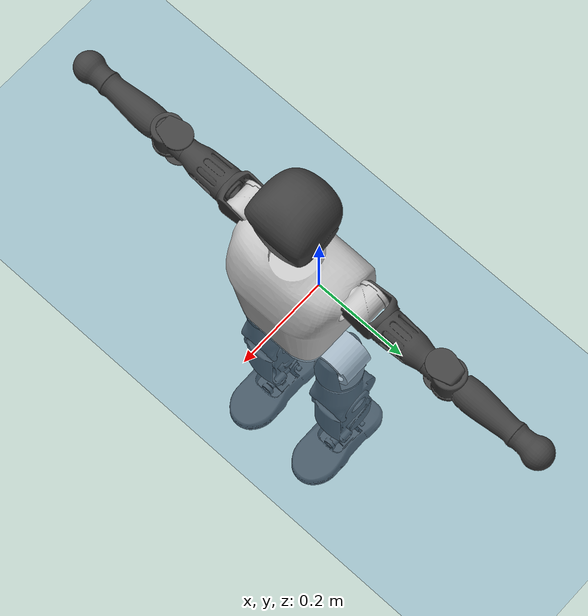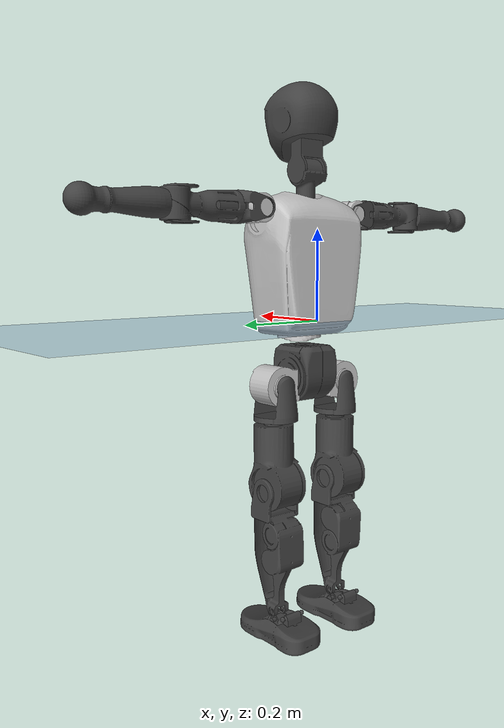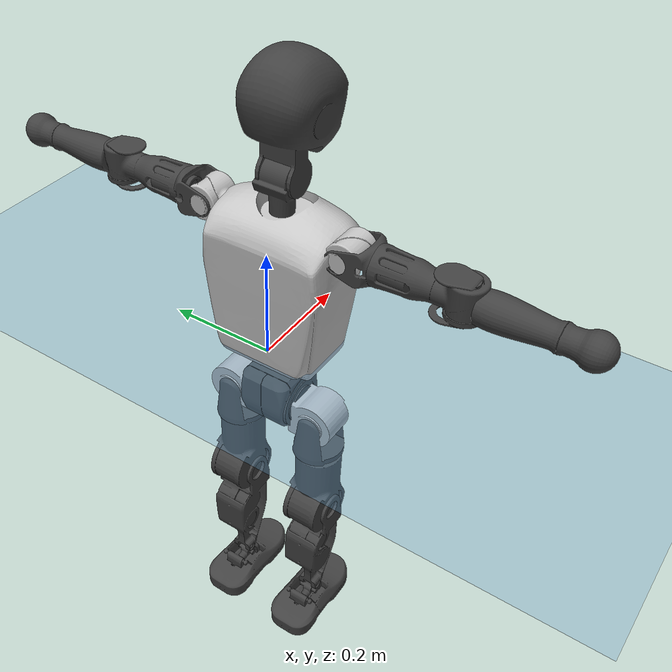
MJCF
<mujoco model="T1">
  <compiler angle="radian" assetdir="assets" balanceinertia="true" inertiafromgeom="false"/>

  <option timestep="0.005" density="1.2" viscosity="2e-05"/>

  <size nkey="1"/>

  <visual>
    <quality shadowsize="8192"/>
    <map shadowclip="0.5"/>
  </visual>

  <default>
    <default class="/">
      <joint armature="0.01" damping="0.01" frictionloss="0.1"/>
      <geom contype="0" conaffinity="0" group="1" solref="-1000 -80"/>
      <site size="0.01 0.005 0.005" group="5"/>
      <general forcelimited="true" biastype="affine" gainprm="25" biasprm="0 -25 -0.6"/>
      <default class="t1">
        <geom rgba="0.25 0.25 0.25 1"/>
        <default class="visual">
          <geom type="mesh" group="2"/>
        </default>
        <default class="collision">
          <geom group="3"/>
        </default>
        <default class="foot">
          <geom size="0.1115 0.05 0.015" type="box" condim="6" group="4" priority="1" solimp="0.015 1 0.015"/>
        </default>
        <default class="reward_collision_sphere">
          <geom group="5" rgba="1 0 0 1"/>
        </default>
      </default>
    </default>
  </default>

  <asset>
    <texture type="skybox" colorspace="auto" name="//unnamed_texture_0" builtin="gradient" rgb1="0.95 0.95 0.95" rgb2="0.95 0.95 0.95" width="100" height="600"/>
    <texture type="2d" colorspace="auto" name="texplane" builtin="checker" rgb1="0.345 0.575 0.748" rgb2="0.345 0.575 0.748" markrgb="1 1 1" width="512" height="512"/>
    <material name="MatPlane" class="/" texture="texplane" texuniform="true" texrepeat="2 2" specular="0.9"/>
    <mesh name="Trunk" class="/" file="Trunk.stl"/>
    <mesh name="H1" class="/" file="H1.stl"/>
    <mesh name="H2" class="/" file="H2.stl"/>
    <mesh name="AL1" class="/" file="AL1.stl"/>
    <mesh name="AL2" class="/" file="AL2.stl"/>
    <mesh name="AL3" class="/" file="AL3.stl"/>
    <mesh name="left_hand_link" class="/" file="left_hand_link.stl"/>
    <mesh name="AR1" class="/" file="AR1.stl"/>
    <mesh name="AR2" class="/" file="AR2.stl"/>
    <mesh name="AR3" class="/" file="AR3.stl"/>
    <mesh name="right_hand_link" class="/" file="right_hand_link.stl"/>
    <mesh name="Waist" class="/" file="Waist.stl"/>
    <mesh name="Hip_Pitch_Left" class="/" file="Hip_Pitch_Left.stl"/>
    <mesh name="Hip_Roll_Left" class="/" file="Hip_Roll_Left.stl"/>
    <mesh name="Hip_Yaw_Left" class="/" file="Hip_Yaw_Left.stl"/>
    <mesh name="Shank_Left" class="/" file="Shank_Left.stl"/>
    <mesh name="Ankle_Cross_Left" class="/" file="Ankle_Cross_Left.stl"/>
    <mesh name="left_foot_link" class="/" file="left_foot_link.stl"/>
    <mesh name="Hip_Pitch_Right" class="/" file="Hip_Pitch_Right.stl"/>
    <mesh name="Hip_Roll_Right" class="/" file="Hip_Roll_Right.stl"/>
    <mesh name="Hip_Yaw_Right" class="/" file="Hip_Yaw_Right.stl"/>
    <mesh name="Shank_Right" class="/" file="Shank_Right.stl"/>
    <mesh name="Ankle_Cross_Right" class="/" file="Ankle_Cross_Right.stl"/>
    <mesh name="right_foot_link" class="/" file="right_foot_link.stl"/>
  </asset>

  <worldbody>
    <geom name="floor" class="/" size="100 100 0.125" type="plane" group="0" material="MatPlane"/>
    <light name="toplight_shadow" class="/" pos="0 0 5" dir="0.0990148 0.0990148 -0.990148" type="directional" ambient="0.04 0.04 0.04" diffuse="0.55 0.55 0.55" specular="0.12 0.12 0.12"/>
    <light name="toplight_fill" class="/" pos="0 0 5" dir="0.0990148 0.0990148 -0.990148" type="directional" castshadow="false" ambient="0.04 0.04 0.04" diffuse="0.3 0.3 0.3" specular="0.08 0.08 0.08"/>
    <body name="trunk" childclass="t1" pos="-0.00089566 -0.000331112 0.00237811" quat="0.999999 -0.000567268 0.000884134 0.000757924">
      <inertial pos="0.0337221 -0.00225751 0.116067" quat="0.999955 -0.00132866 -0.00935164 3.96781e-05" mass="7.36331" diaginertia="0.0126057 0.032417 0.084804"/>
      <joint name="//unnamed_joint_0" type="free" armature="0" damping="0" frictionloss="0"/>
      <geom name="//unnamed_geom_1" class="visual" rgba="0.76 0.76 0.76 1" mesh="Trunk"/>
      <geom name="//unnamed_geom_2" class="collision" size="0.0647661 0.0863547 0.129532" pos="0.0400436 0 0.129645" type="box"/>
      <geom name="//unnamed_geom_3" class="reward_collision_sphere" size="0.099308" pos="0.0400436 0 0.108037"/>
      <geom name="//unnamed_geom_4" class="reward_collision_sphere" size="0.0129532" pos="0.0400436 0.0716444 0"/>
      <geom name="//unnamed_geom_5" class="reward_collision_sphere" size="0.0129532" pos="0.0400436 -0.0716444 0"/>
      <geom name="//unnamed_geom_6" class="reward_collision_sphere" size="0.0129532" pos="0.0400436 0.0901876 0.194467"/>
      <geom name="//unnamed_geom_7" class="reward_collision_sphere" size="0.0129532" pos="0.0400436 -0.0901876 0.194467"/>
      <site name="imu" pos="-0.000302556 -0.00112234 -0.0011152" size="0.00863547"/>
      <camera name="track" pos="0 -1.68575 0" quat="0.707107 0.707107 0 0" mode="trackcom"/>
      <camera name="ego_camera" pos="0.0814221 0 0.453757" quat="-0.5 -0.5 0.5 0.5"/>
      <body name="H1" pos="0.041299 -0.00160302 0.260001" quat="1 -0.000176164 -5.28674e-06 -8.30038e-05">
        <inertial pos="-0.000722998 -0.00191649 0.0644466" quat="0.762285 -0.0146526 0.00220693 0.647072" mass="0.287208" diaginertia="3.16672e-05 9.90487e-05 0.000222762"/>
        <joint name="AAHead_yaw" pos="0 0 0" axis="-0.00643366 0.0110993 0.999918" range="-1.5572 1.59073" armature="0.00867614" damping="0.00497433" frictionloss="0.0842265"/>
        <geom name="//unnamed_geom_8" class="visual" mesh="H1"/>
        <body name="H2" pos="-0.00133078 -0.00274508 0.067079" quat="0.999999 0.000510508 -0.000157745 -0.00127176">
          <inertial pos="0.00581651 0.000571348 0.107385" quat="0.989092 0.103428 -0.0712293 -0.0769819" mass="0.397457" diaginertia="0.000266559 0.000829549 0.00262692"/>
          <joint name="Head_pitch" pos="0 0 0" axis="0.01029 -0.999937 0.0043721" stiffness="0.00735223" range="-1.24203 0.297774" armature="0.00989943" damping="0" frictionloss="0.0857923"/>
          <geom name="//unnamed_geom_9" class="visual" mesh="H2"/>
          <geom name="//unnamed_geom_10" class="collision" size="0.0690838" pos="0.00667394 0 0.118841"/>
          <geom name="//unnamed_geom_11" class="reward_collision_sphere" size="0.0777193" pos="0.0133479 0 0.108037"/>
        </body>
      </body>
      <body name="AL1" pos="0.0412652 0.0925627 0.239235" quat="1 -0.000164729 -0.000506362 -0.000308435">
        <inertial pos="-0.000855874 0.0392846 -0.000179889" quat="0.505543 0.493981 -0.506258 0.494077" mass="0.338434" diaginertia="0.00018704 0.000532788 0.000416896"/>
        <joint name="Left_Shoulder_Pitch" pos="0 0 0" axis="0.00039585 0.999999 0.00153882" range="-3.2507 1.22665" armature="0.0077283" damping="0.00279439" frictionloss="0.0753437"/>
        <geom name="//unnamed_geom_12" class="visual" rgba="0.76 0.76 0.76 1" mesh="AL1"/>
        <body name="AL2" pos="-0.00169306 0.0435167 0.000217395" quat="1 5.63463e-05 3.0411e-05 -2.43792e-05">
          <inertial pos="0.0024388 0.0301987 0.000800067" quat="0.485518 0.51546 -0.486664 0.511597" mass="0.107365" diaginertia="5.45885e-05 0.000149969 0.000276894"/>
          <joint name="Left_Shoulder_Roll" pos="0 0 0" axis="-0.999977 -0.00645689 0.00228454" stiffness="0.00939131" range="-1.56689 1.7453" armature="0.00861839" damping="0" frictionloss="0.0865407"/>
          <geom name="//unnamed_geom_13" class="visual" mesh="AL2"/>
          <body name="AL3" pos="0.00271597 0.0516543 -0.000226049" quat="1 -2.17342e-06 -1.44138e-06 -1.54076e-06">
            <inertial pos="0.00215158 0.0718197 -0.000104808" quat="0.711339 0.702746 0.0108613 0.00521611" mass="0.634103" diaginertia="0.00160719 0.00544338 0.000892064"/>
            <joint name="Left_Elbow_Pitch" pos="0 0 0" axis="0.00100554 -0.999993 -0.00347421" stiffness="0.00724471" range="-2.27134 2.30254" armature="0.00907418" damping="0.023436" frictionloss="0.0769701"/>
            <geom name="//unnamed_geom_14" class="visual" mesh="AL3"/>
            <geom name="//unnamed_geom_15" class="collision" size="0.0259064 0.0647661" pos="0 0.0421437 0" quat="0.707105 0.707108 0 0" type="cylinder"/>
            <geom name="//unnamed_geom_16" class="reward_collision_sphere" size="0.0310877"/>
            <body name="left_hand_link" pos="-0.00164966 0.126144 0.000273865" quat="0.999999 0.000315153 -0.00127331 0.000448655">
              <inertial pos="0.000668628 0.0932019 0.00323482" quat="0.707617 0.706596 0.000224416 -0.000710928" mass="0.213603" diaginertia="0.00111152 0.00356813 0.000325196"/>
              <joint name="Left_Elbow_Yaw" pos="0 0 0" axis="-0.00301976 -0.00941389 0.999951" range="-2.4986 -0.0135339" armature="0.00873358" damping="0.00802223" frictionloss="0.0747635"/>
              <geom name="//unnamed_geom_17" class="visual" mesh="left_hand_link"/>
              <geom name="//unnamed_geom_18" class="collision" size="0.0259064 0.0755604" pos="0 0.109574 0" quat="0.707105 0.707108 0 0" type="cylinder"/>
              <geom name="//unnamed_geom_19" class="reward_collision_sphere" size="0.0431774"/>
              <geom name="//unnamed_geom_20" class="reward_collision_sphere" size="0.0302242" pos="0 0.0927162 0"/>
              <geom name="//unnamed_geom_21" class="reward_collision_sphere" size="0.0302242" pos="0 0.181218 0"/>
            </body>
          </body>
        </body>
      </body>
      <body name="AR1" pos="0.03681 -0.0858353 0.235188" quat="1 1.7363e-05 0.000344516 5.8302e-05">
        <inertial pos="-0.000958947 -0.0355844 0.00207528" quat="0.501332 0.498095 -0.503881 0.496661" mass="0.348789" diaginertia="0.000172526 0.000524463 0.00042557"/>
        <joint name="Right_Shoulder_Pitch" pos="0 0 0" axis="-0.00342355 -0.999993 0.00137416" stiffness="0.000397144" range="-1.22346 3.32054" armature="0.00808221" damping="0.0108013" frictionloss="0.0767862"/>
        <geom name="//unnamed_geom_22" class="visual" rgba="0.76 0.76 0.76 1" mesh="AR1"/>
        <body name="AR2" pos="-0.00228245 -0.0410273 -0.000551009" quat="0.999999 0.000123913 -0.000607452 0.000832718">
          <inertial pos="0.00497834 -0.0317033 0.00311088" quat="0.511817 0.487866 -0.511717 0.488033" mass="0.103607" diaginertia="5.25647e-05 0.000148112 0.000268152"/>
          <joint name="Right_Shoulder_Roll" pos="0 0 0" axis="-0.999816 -0.0190245 -0.00243858" range="-1.68348 1.56589" armature="0.00788555" damping="0.018192" frictionloss="0.0891397"/>
          <geom name="//unnamed_geom_23" class="visual" mesh="AR2"/>
          <body name="AR3" pos="-0.000228765 -0.0524014 0.000380477" quat="1 3.57685e-06 -7.68385e-05 -4.78674e-06">
            <inertial pos="-0.000715279 -0.0722321 0.00156436" quat="0.703147 0.710999 0.00800301 0.000952353" mass="0.670821" diaginertia="0.00176331 0.00530401 0.000934272"/>
            <joint name="Right_Elbow_Pitch" pos="0 0 0" axis="0.010109 0.999893 0.0106002" stiffness="0.00826279" range="-2.21874 2.22871" armature="0.00862247" damping="0.0155849" frictionloss="0.0853064"/>
            <geom name="//unnamed_geom_24" class="visual" mesh="AR3"/>
            <geom name="//unnamed_geom_25" class="collision" size="0.0259064 0.0647661" pos="0 -0.0421437 0" quat="0.707105 0.707108 0 0" type="cylinder"/>
            <geom name="//unnamed_geom_26" class="reward_collision_sphere" size="0.0310877"/>
            <body name="right_hand_link" pos="-0.00117129 -0.123444 -0.00207922" quat="0.999999 -0.000524484 -0.000871061 -0.000965686">
              <inertial pos="-0.000820071 -0.0933056 -0.00109112" quat="0.705464 0.708745 0.00114966 -0.000601742" mass="0.205846" diaginertia="0.00111356 0.00348801 0.000310332"/>
              <joint name="Right_Elbow_Yaw" pos="0 0 0" axis="-0.00500738 0.00113487 0.999987" range="0.00867305 2.42122" armature="0.0086689" damping="0" frictionloss="0.0965335"/>
              <geom name="//unnamed_geom_27" class="visual" mesh="right_hand_link"/>
              <geom name="//unnamed_geom_28" class="collision" size="0.0259064 0.0755604" pos="0 -0.109574 0" quat="0.707105 0.707108 0 0" type="cylinder"/>
              <geom name="//unnamed_geom_29" class="reward_collision_sphere" size="0.0431774"/>
              <geom name="//unnamed_geom_30" class="reward_collision_sphere" size="0.0302242" pos="0 -0.0927162 0"/>
              <geom name="//unnamed_geom_31" class="reward_collision_sphere" size="0.0302242" pos="0 -0.181218 0"/>
            </body>
          </body>
        </body>
      </body>
      <body name="Waist" pos="0.0405162 0.00201694 -0.125313" quat="0.999999 0.00158619 0.000144146 0.000349829">
        <inertial pos="0.0026064 0.00164113 0.00826795" quat="0.983644 -0.00068353 -0.180111 0.002205" mass="1.56696" diaginertia="0.000693509 0.00213375 0.00700211"/>
        <joint name="Waist" pos="0 0 0" axis="0.00244755 0.000106498 0.999997" stiffness="0.00405587" range="-1.52175 1.52279" armature="0.00741483" damping="0.00898331" frictionloss="0.089161"/>
        <geom name="//unnamed_geom_32" class="visual" mesh="Waist"/>
        <body name="Hip_Pitch_Left" pos="0.000613773 0.0909737 0.00208315" quat="1 -0.000485047 0.000190329 -0.000213642">
          <inertial pos="-0.0014985 -0.00629003 -0.0185466" quat="0.975679 0.218826 0.0118258 0.00509147" mass="0.682853" diaginertia="0.000238803 0.000608817 0.00184997"/>
          <joint name="Left_Hip_Pitch" pos="0 0 0" axis="0.00606648 0.999978 -0.00268547" stiffness="0.00381915" range="-1.84256 1.55391" armature="0.00777183" damping="0.0135785" frictionloss="0.0849641"/>
          <geom name="//unnamed_geom_33" class="visual" rgba="0.76 0.76 0.76 1" mesh="Hip_Pitch_Left"/>
          <body name="Hip_Roll_Left" pos="3.58563e-05 -0.00342375 -0.0207238" quat="1 -0.000666051 0.000251866 0.000622145">
            <inertial pos="0.00310913 -0.00296267 -0.0581997" quat="0.70772 -0.00665439 -0.00580188 0.706438" mass="0.246388" diaginertia="0.000233649 0.000657238 0.000784727"/>
            <joint name="Left_Hip_Roll" pos="0 0 0" axis="-0.999936 -0.00707609 -0.0088653" range="-1.56603 0.183692" armature="0.00949912" damping="0.0160625" frictionloss="0.0851163"/>
            <geom name="//unnamed_geom_34" class="visual" mesh="Hip_Roll_Left"/>
            <geom name="//unnamed_geom_35" class="reward_collision_sphere" size="0.0474951"/>
            <body name="Hip_Yaw_Left" pos="0.0023082 0.0028539 -0.0863646" quat="1 -2.3199e-06 -3.79124e-08 -0.000115883">
              <inertial pos="-0.00467409 -0.00147856 -0.0961221" quat="0.69205 -0.0270215 -0.0361104 0.720439" mass="1.3913" diaginertia="0.00338059 0.0106815 0.00382133"/>
              <joint name="Left_Hip_Yaw" pos="0 0 0" axis="0.00924085 -0.00316285 -0.999952" stiffness="0.00923107" range="-0.982983 1.02596" armature="0.00843398" damping="0" frictionloss="0.096752"/>
              <geom name="//unnamed_geom_36" class="visual" mesh="Hip_Yaw_Left"/>
              <geom name="//unnamed_geom_37" class="collision" size="0.0431774 0.0690838" type="cylinder"/>
              <body name="Shank_Left" pos="-0.0108459 -0.000336869 -0.147967" quat="1 -0.000924312 3.46924e-05 -0.000168618">
                <inertial pos="-0.0044021 -0.00222123 -0.131636" quat="0.997438 0.00358166 -0.0261091 0.0665014" mass="1.07667" diaginertia="0.00447725 0.0148999 0.0026854"/>
                <joint name="Left_Knee_Pitch" pos="0 0 0" axis="-0.0124824 0.999833 0.0133548" stiffness="0.000532351" range="0.0181498 2.31734" armature="0.00953776" damping="0" frictionloss="0.0862714"/>
                <geom name="//unnamed_geom_38" class="visual" mesh="Shank_Left"/>
                <geom name="//unnamed_geom_39" class="collision" size="0.0431774 0.0647661" pos="0 0 -0.129645" type="cylinder"/>
                <geom name="//unnamed_geom_40" class="reward_collision_sphere" size="0.0561306"/>
                <body name="Ankle_Cross_Left" pos="0.00246932 -0.00230808 -0.303753" quat="0.999999 0.000592519 -1.19702e-05 -0.00135164">
                  <inertial pos="-0.00241161 -0.00102216 -0.00628387" quat="0.443752 0.5435 0.556706 0.444715" mass="0.0465353" diaginertia="4.01504e-06 1.11908e-05 1.70941e-05"/>
                  <joint name="Left_Ankle_Pitch" pos="0 0 0" axis="-0.00163078 0.99999 -0.0040486" stiffness="0.00131684" range="-0.864743 0.348936" armature="0.00977548" damping="0.015438" frictionloss="0.0976257"/>
                  <geom name="//unnamed_geom_41" class="visual" mesh="Ankle_Cross_Left"/>
                  <body name="left_foot_link" pos="-0.00294667 -0.00310005 -0.0137762" quat="1 -7.49364e-05 5.92434e-05 1.09356e-05">
                    <inertial pos="-0.00224361 0.00204523 -0.0103243" quat="0.00652711 0.620409 0.00560028 0.784231" mass="0.431999" diaginertia="0.000338081 0.000982546 0.00311727"/>
                    <joint name="Left_Ankle_Roll" pos="0 0 0" axis="-0.999984 -0.00194947 -0.00539003" range="-0.455111 0.431869" armature="0.00878497" damping="0.00930942" frictionloss="0.0796576"/>
                    <geom name="//unnamed_geom_42" class="visual" mesh="left_foot_link"/>
                    <geom name="left_foot" class="foot" size="0.103389 0.0445827 0.0121321" pos="0.00667394 0 -0.0162056"/>
                    <geom name="//unnamed_geom_44" class="reward_collision_sphere" size="0.0449045" pos="0.00667394 0 -0.0162056"/>
                    <geom name="//unnamed_geom_45" class="reward_collision_sphere" size="0.0259064" pos="0.0634024 -0.0193861 -0.0162056"/>
                    <geom name="//unnamed_geom_46" class="reward_collision_sphere" size="0.0259064" pos="-0.0467176 -0.0193861 -0.0162056"/>
                    <site name="left_foot" class="foot" pos="0.00667394 0 -0.0162056" size="0.00863547"/>
                  </body>
                </body>
              </body>
            </body>
          </body>
        </body>
        <body name="Hip_Pitch_Right" pos="-0.00168283 -0.0901623 0.000633512" quat="1 0.000236434 -0.000531378 -0.000201985">
          <inertial pos="-0.00249418 0.0065758 -0.0220524" quat="0.973473 -0.228418 0.0124402 -0.0045835" mass="0.641482" diaginertia="0.00024227 0.00065038 0.00179834"/>
          <joint name="Right_Hip_Pitch" pos="0 0 0" axis="7.78697e-05 -1 0.000825342" range="-1.58668 1.74427" armature="0.00969177" damping="0.00805395" frictionloss="0.0845937"/>
          <geom name="//unnamed_geom_47" class="visual" rgba="0.76 0.76 0.76 1" mesh="Hip_Pitch_Right"/>
          <body name="Hip_Roll_Right" pos="0.00139163 -0.00188677 -0.0215902" quat="1 0.000408989 -0.000491434 0.000652996">
            <inertial pos="0.000595875 0.00245327 -0.0581362" quat="0.70621 -0.00904806 -0.0152188 0.707781" mass="0.247892" diaginertia="0.000232834 0.000652076 0.000764308"/>
            <joint name="Right_Hip_Roll" pos="0 0 0" axis="-0.999854 -0.0142948 0.00939478" stiffness="0.0206376" range="-0.22119 1.56716" armature="0.00734761" damping="0.00797571" frictionloss="0.0856197"/>
            <geom name="//unnamed_geom_48" class="visual" mesh="Hip_Roll_Right"/>
            <geom name="//unnamed_geom_49" class="reward_collision_sphere" size="0.0474951"/>
            <body name="Hip_Yaw_Right" pos="-0.00126855 -0.00147193 -0.0888198" quat="1 3.49431e-06 -3.30388e-06 2.34743e-06">
              <inertial pos="-0.00669537 -0.000462389 -0.0958004" quat="0.71242 -0.025159 -0.0307364 0.700628" mass="1.44142" diaginertia="0.00342123 0.0109482 0.00388049"/>
              <joint name="Right_Hip_Yaw" pos="0 0 0" axis="-0.00186744 -0.0103952 -0.999944" range="-0.984373 0.949799" armature="0.00848783" damping="0" frictionloss="0.0853984"/>
              <geom name="//unnamed_geom_50" class="visual" mesh="Hip_Yaw_Right"/>
              <geom name="//unnamed_geom_51" class="collision" size="0.0431774 0.0690838" type="cylinder"/>
              <body name="Shank_Right" pos="-0.00755348 0.00124407 -0.142328" quat="1 0.000328201 -0.000554455 0.000180708">
                <inertial pos="-0.00521063 0.00164939 -0.135328" quat="0.99903 -0.00142287 -0.0236522 -0.0371058" mass="1.10135" diaginertia="0.00458511 0.0148028 0.00282828"/>
                <joint name="Right_Knee_Pitch" pos="0 0 0" axis="0.000778127 -0.999986 -0.00529546" stiffness="0.000555255" range="-2.32137 0.0174333" armature="0.00964091" damping="0" frictionloss="0.0938946"/>
                <geom name="//unnamed_geom_52" class="visual" mesh="Shank_Right"/>
                <geom name="//unnamed_geom_53" class="collision" size="0.0431774 0.0647661" pos="0 0 -0.129645" type="cylinder"/>
                <geom name="//unnamed_geom_54" class="reward_collision_sphere" size="0.0561306"/>
                <body name="Ankle_Cross_Right" pos="-0.00315553 7.37407e-05 -0.302968" quat="1 -1.15443e-05 -3.21485e-05 -2.45269e-05">
                  <inertial pos="-0.00394657 0.000743817 -0.00911329" quat="0.439494 0.5502 0.552897 0.445456" mass="0.0468046" diaginertia="3.83871e-06 1.09683e-05 1.62912e-05"/>
                  <joint name="Right_Ankle_Pitch" pos="0 0 0" axis="0.00129672 -0.99993 0.0117656" stiffness="0.00769319" range="-0.406461 0.861461" armature="0.00893979" damping="0.0169874" frictionloss="0.0875915"/>
                  <geom name="//unnamed_geom_55" class="visual" mesh="Ankle_Cross_Right"/>
                  <body name="right_foot_link" pos="0.000700606 -0.00148659 -0.0150785" quat="1 0.000811343 -0.000165405 2.90442e-05">
                    <inertial pos="-0.00189417 -0.000886406 -0.0101263" quat="0.00370788 0.614668 -0.00796959 0.788737" mass="0.440015" diaginertia="0.000356002 0.000981479 0.00310479"/>
                    <joint name="Right_Ankle_Roll" pos="0 0 0" axis="-0.999996 0.00192188 -0.00206985" stiffness="0.00715822" range="-0.385884 0.383455" armature="0.00957257" damping="0.00961393" frictionloss="0.0934901"/>
                    <geom name="//unnamed_geom_56" class="visual" mesh="right_foot_link"/>
                    <geom name="right_foot" class="foot" size="0.0886806 0.0434341 0.0129333" pos="0.00667394 0 -0.0162056"/>
                    <geom name="//unnamed_geom_58" class="reward_collision_sphere" size="0.0345419"/>
                    <geom name="//unnamed_geom_59" class="reward_collision_sphere" size="0.0259064" pos="0.00667394 0 -0.0162056"/>
                    <geom name="//unnamed_geom_60" class="reward_collision_sphere" size="0.0259064" pos="0.0634024 0.0193861 -0.0162056"/>
                    <geom name="//unnamed_geom_61" class="reward_collision_sphere" size="0.0259064" pos="-0.0467176 0.0193861 -0.0162056"/>
                    <site name="right_foot" class="foot" pos="0.00667394 0 -0.0162056" size="0.00863547"/>
                  </body>
                </body>
              </body>
            </body>
          </body>
        </body>
      </body>
    </body>
  </worldbody>

  <contact>
    <pair class="/" geom1="floor" geom2="left_foot" name="//unnamed_contact_0"/>
    <pair class="/" geom1="floor" geom2="right_foot" name="//unnamed_contact_1"/>
  </contact>

  <actuator>
    <general name="AAHead_yaw" class="/" joint="AAHead_yaw" forcerange="-5.52402 5.52402" gainprm="21.6197" biasprm="0 -21.6197 -0.484546"/>
    <general name="Head_pitch" class="/" joint="Head_pitch" forcerange="-6.45577 6.45577" gainprm="21.6197" biasprm="0 -21.6197 -0.484546"/>
    <general name="Left_Shoulder_Pitch" class="/" joint="Left_Shoulder_Pitch" forcerange="-15.5348 15.5348" gainprm="21.6197" biasprm="0 -21.6197 -0.484546"/>
    <general name="Left_Shoulder_Roll" class="/" joint="Left_Shoulder_Roll" forcerange="-13.8983 13.8983" gainprm="21.6197" biasprm="0 -21.6197 -0.484546"/>
    <general name="Left_Elbow_Pitch" class="/" joint="Left_Elbow_Pitch" forcerange="-15.7683 15.7683" gainprm="21.6197" biasprm="0 -21.6197 -0.484546"/>
    <general name="Left_Elbow_Yaw" class="/" joint="Left_Elbow_Yaw" forcerange="-16.0172 16.0172" gainprm="21.6197" biasprm="0 -21.6197 -0.484546"/>
    <general name="Right_Shoulder_Pitch" class="/" joint="Right_Shoulder_Pitch" forcerange="-15.8202 15.8202" gainprm="21.6197" biasprm="0 -21.6197 -0.484546"/>
    <general name="Right_Shoulder_Roll" class="/" joint="Right_Shoulder_Roll" forcerange="-13.9566 13.9566" gainprm="21.6197" biasprm="0 -21.6197 -0.484546"/>
    <general name="Right_Elbow_Pitch" class="/" joint="Right_Elbow_Pitch" forcerange="-15.65 15.65" gainprm="21.6197" biasprm="0 -21.6197 -0.484546"/>
    <general name="Right_Elbow_Yaw" class="/" joint="Right_Elbow_Yaw" forcerange="-15.6118 15.6118" gainprm="21.6197" biasprm="0 -21.6197 -0.484546"/>
    <general name="Waist" class="/" joint="Waist" forcerange="-26.7954 26.7954" gainprm="21.6197" biasprm="0 -21.6197 -0.484546"/>
    <general name="Left_Hip_Pitch" class="/" joint="Left_Hip_Pitch" forcerange="-34.8496 34.8496" gainprm="21.6197" biasprm="0 -21.6197 -0.484546"/>
    <general name="Left_Hip_Roll" class="/" joint="Left_Hip_Roll" forcerange="-26.3199 26.3199" gainprm="21.6197" biasprm="0 -21.6197 -0.484546"/>
    <general name="Left_Hip_Yaw" class="/" joint="Left_Hip_Yaw" forcerange="-26.3229 26.3229" gainprm="21.6197" biasprm="0 -21.6197 -0.484546"/>
    <general name="Left_Knee_Pitch" class="/" joint="Left_Knee_Pitch" forcerange="-52.4449 52.4449" gainprm="21.6197" biasprm="0 -21.6197 -0.484546"/>
    <general name="Left_Ankle_Pitch" class="/" joint="Left_Ankle_Pitch" forcerange="-16.9106 16.9106" gainprm="21.6197" biasprm="0 -21.6197 -0.484546"/>
    <general name="Left_Ankle_Roll" class="/" joint="Left_Ankle_Roll" forcerange="-12.8178 12.8178" gainprm="21.6197" biasprm="0 -21.6197 -0.484546"/>
    <general name="Right_Hip_Pitch" class="/" joint="Right_Hip_Pitch" forcerange="-42.2689 42.2689" gainprm="21.6197" biasprm="0 -21.6197 -0.484546"/>
    <general name="Right_Hip_Roll" class="/" joint="Right_Hip_Roll" forcerange="-26.2456 26.2456" gainprm="21.6197" biasprm="0 -21.6197 -0.484546"/>
    <general name="Right_Hip_Yaw" class="/" joint="Right_Hip_Yaw" forcerange="-28.6216 28.6216" gainprm="21.6197" biasprm="0 -21.6197 -0.484546"/>
    <general name="Right_Knee_Pitch" class="/" joint="Right_Knee_Pitch" forcerange="-50.6182 50.6182" gainprm="21.6197" biasprm="0 -21.6197 -0.484546"/>
    <general name="Right_Ankle_Pitch" class="/" joint="Right_Ankle_Pitch" forcerange="-16.5636 16.5636" gainprm="21.6197" biasprm="0 -21.6197 -0.484546"/>
    <general name="Right_Ankle_Roll" class="/" joint="Right_Ankle_Roll" forcerange="-12.9599 12.9599" gainprm="21.6197" biasprm="0 -21.6197 -0.484546"/>
  </actuator>

  <sensor>
    <gyro site="imu" name="imu_angular_velocity"/>
    <velocimeter site="imu" name="imu_linear_velocity"/>
    <framelinvel objtype="site" objname="left_foot" name="left_foot_global_linear_velocity"/>
    <framelinvel objtype="site" objname="right_foot" name="right_foot_global_linear_velocity"/>
  </sensor>

  <keyframe>
    <key name="home" qpos="0 0 0.6385 1 0 0 0 0 0 0 1.4 0 -0.4 0 -1.4 0 0.4 0 -0.4 0 0 0.8 -0.4 0 0.4 0 0 -0.8 0.4 0"/>
  </keyframe>
</mujoco>
